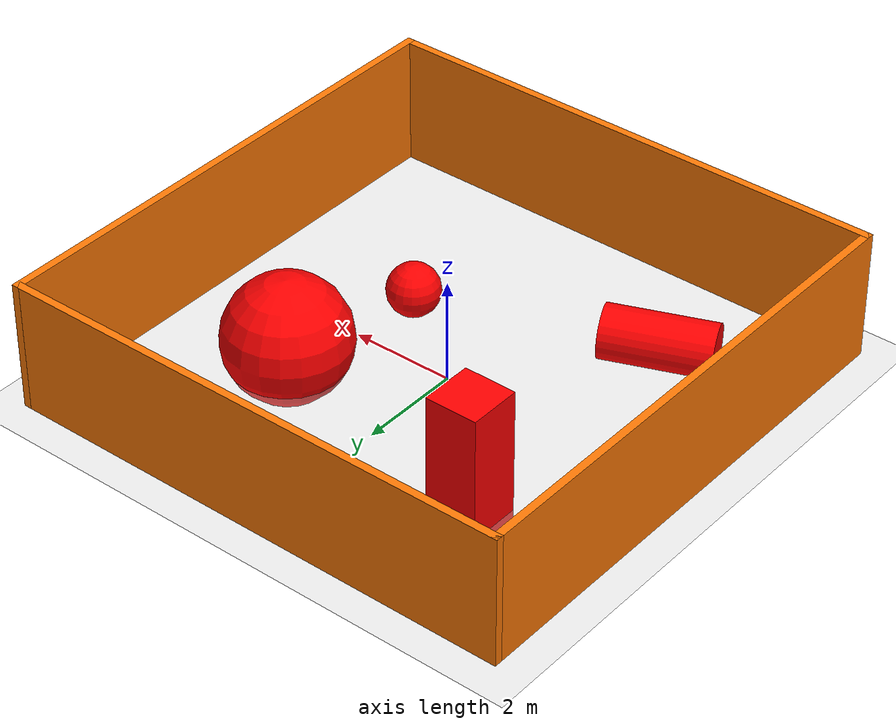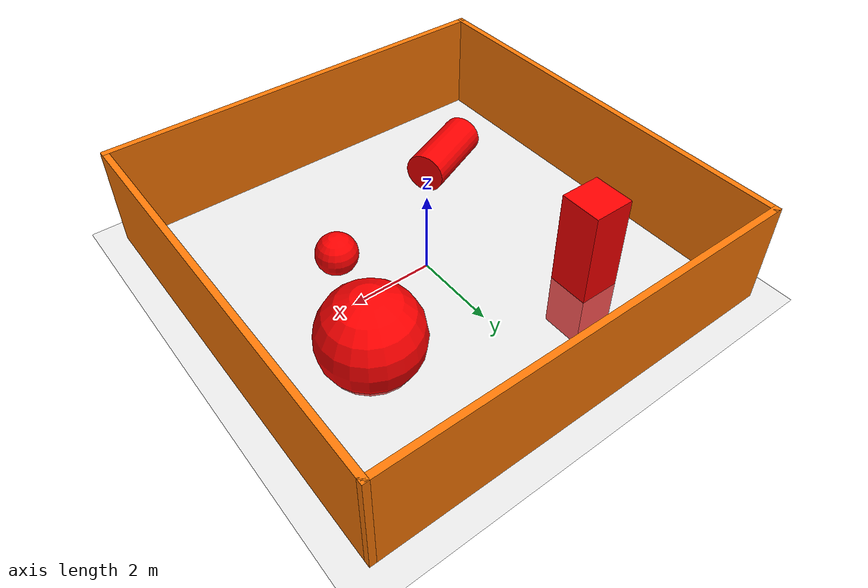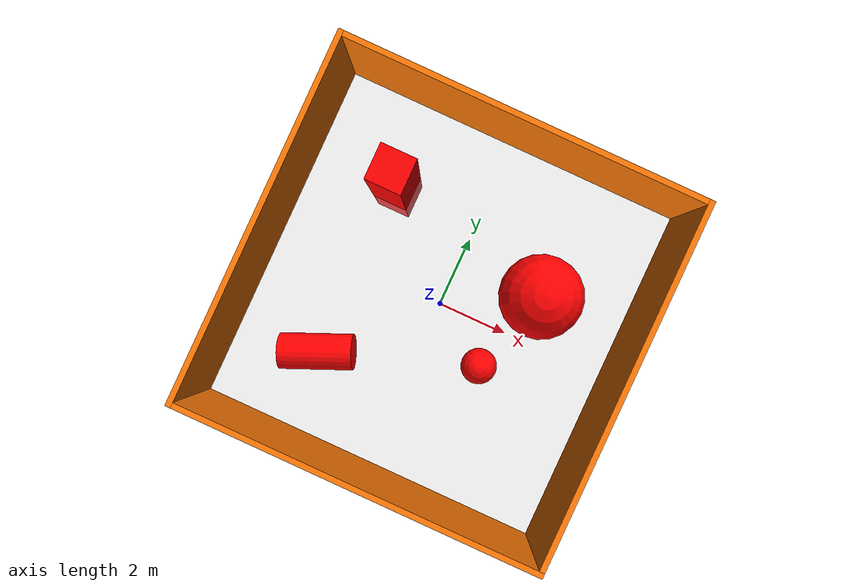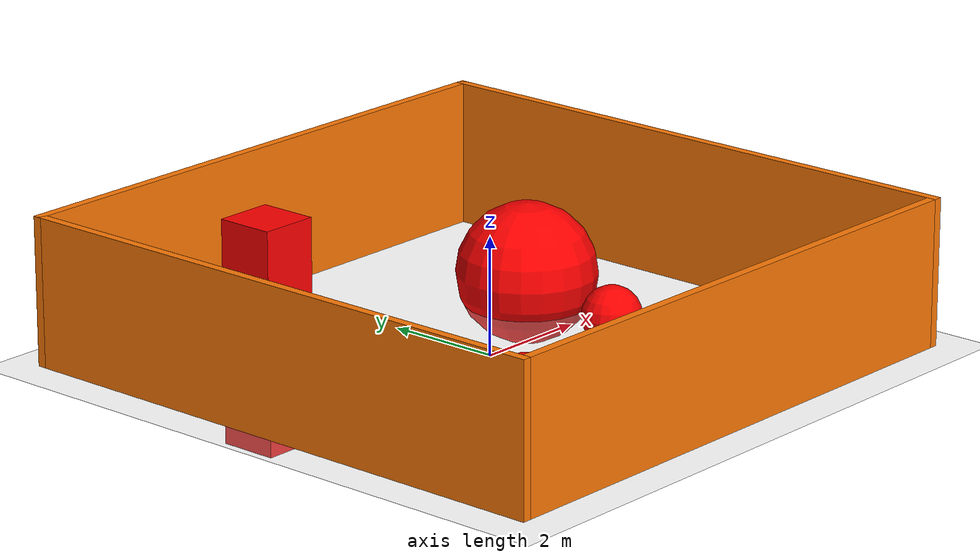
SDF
<sdf version="1.6">
 <world name="default">
  <light name="sun" type="directional">
   <pose>0 0 10 0 -0 0</pose>
   <diffuse>0.8 0.8 0.8 1</diffuse>
   <specular>0.2 0.2 0.2 1</specular>
   <attenuation>
    <range>1000</range>
    <constant>0.9</constant>
    <linear>0.01</linear>
    <quadratic>0.001</quadratic>
   </attenuation>
   <direction>-0.5 0.1 -0.9</direction>
  </light>
  <model name="ground_plane">
   <static>1</static>
   <link name="link">
    <collision name="collision">
     <geometry><plane><normal>0 0 1</normal><size>100 100</size></plane></geometry>
     <surface>
      <contact><collide_bitmask>65535</collide_bitmask></contact>
      <friction><ode><mu>100</mu><mu2>50</mu2></ode></friction>
     </surface>
    </collision>
    <visual name="visual">
     <cast_shadows>0</cast_shadows>
     <geometry><plane><normal>0 0 1</normal><size>100 100</size></plane></geometry>
     <material>
      <script><uri>file://media/materials/scripts/gazebo.material</uri><name>Gazebo/Grey</name></script>
     </material>
    </visual>
   </link>
  </model>
  <gravity>0 0 -9.8</gravity>
  <magnetic_field>6e-06 2.3e-05 -4.2e-05</magnetic_field>
  <atmosphere type="adiabatic"/>
  <physics name="default_physics" default="0" type="ode">
   <max_step_size>0.001</max_step_size>
   <real_time_factor>1</real_time_factor>
   <real_time_update_rate>1000</real_time_update_rate>
  </physics>
  <scene><ambient>0.4 0.4 0.4 1</ambient><background>0.7 0.7 0.7 1</background><shadows>1</shadows></scene>
  <audio><device>default</device></audio>
  <spherical_coordinates>
   <surface_model>EARTH_WGS84</surface_model>
   <latitude_deg>0</latitude_deg>
   <longitude_deg>0</longitude_deg>
   <elevation>0</elevation>
   <heading_deg>0</heading_deg>
  </spherical_coordinates>
  <model name="Crashland">
   <link name="Wall_0">
    <collision name="Wall_0_Collision">
     <geometry><box><size>10.15 0.15 2.5</size></box></geometry>
     <pose>0 0 1.25 0 -0 0</pose>
    </collision>
    <visual name="Wall_0_Visual">
     <pose>0 0 1.25 0 -0 0</pose>
     <geometry><box><size>10.15 0.15 2.5</size></box></geometry>
     <material>
      <script><uri>file://media/materials/scripts/gazebo.material</uri><name>Gazebo/Grey</name></script>
      <ambient>0.996078 0.47451 0.0196078 1</ambient>
     </material>
     <meta><layer>0</layer></meta>
    </visual>
    <pose>-5 0 0 0 -0 -1.5708</pose>
   </link>
   <link name="Wall_1">
    <collision name="Wall_1_Collision">
     <geometry><box><size>10.15 0.15 2.5</size></box></geometry>
     <pose>0 0 1.25 0 -0 0</pose>
    </collision>
    <visual name="Wall_1_Visual">
     <pose>0 0 1.25 0 -0 0</pose>
     <geometry><box><size>10.15 0.15 2.5</size></box></geometry>
     <material>
      <script><uri>file://media/materials/scripts/gazebo.material</uri><name>Gazebo/Grey</name></script>
      <ambient>0.996078 0.47451 0.0196078 1</ambient>
     </material>
     <meta><layer>0</layer></meta>
    </visual>
    <pose>0 -5 0 0 -0 0</pose>
   </link>
   <link name="Wall_2">
    <collision name="Wall_2_Collision">
     <geometry><box><size>10.15 0.15 2.5</size></box></geometry>
     <pose>0 0 1.25 0 -0 0</pose>
    </collision>
    <visual name="Wall_2_Visual">
     <pose>0 0 1.25 0 -0 0</pose>
     <geometry><box><size>10.15 0.15 2.5</size></box></geometry>
     <material>
      <script><uri>file://media/materials/scripts/gazebo.material</uri><name>Gazebo/Grey</name></script>
      <ambient>0.996078 0.47451 0.0196078 1</ambient>
     </material>
     <meta><layer>0</layer></meta>
    </visual>
    <pose>5 0 0 0 -0 1.5708</pose>
   </link>
   <link name="Wall_3">
    <collision name="Wall_3_Collision">
     <geometry><box><size>10.15 0.15 2.5</size></box></geometry>
     <pose>0 0 1.25 0 -0 0</pose>
    </collision>
    <visual name="Wall_3_Visual">
     <pose>0 0 1.25 0 -0 0</pose>
     <geometry><box><size>10.15 0.15 2.5</size></box></geometry>
     <material>
      <script><uri>file://media/materials/scripts/gazebo.material</uri><name>Gazebo/Grey</name></script>
      <ambient>0.996078 0.47451 0.0196078 1</ambient>
     </material>
     <meta><layer>0</layer></meta>
    </visual>
    <pose>0 5 0 0 -0 3.14159</pose>
   </link>
   <static>1</static>
  </model>
  <model name="obstacle_1">
   <link name="link">
    <inertial>
     <mass>2000</mass>
     <inertia><ixx>2541.67</ixx><ixy>0</ixy><ixz>0</ixz><iyy>2541.67</iyy><iyz>0</iyz><izz>333.333</izz></inertia>
    </inertial>
    <visual name="visual">
     <geometry><box><size>1 1 3.77492</size></box></geometry>
     <material>
      <script><name>Gazebo/Grey</name><uri>file://media/materials/scripts/gazebo.material</uri></script>
      <shader type="vertex"><normal_map>__default__</normal_map></shader>
      <ambient>1 0 0 1</ambient>
      <diffuse>1 0 0 1</diffuse>
      <specular>1 0 0 1</specular>
      <emissive>1 0 0 1</emissive>
     </material>
    </visual>
    <collision name="collision">
     <geometry><box><size>1 1 3.77492</size></box></geometry>
     <surface>
      <friction>
       <ode><mu>1</mu><mu2>1</mu2><fdir1>0 0 0</fdir1><slip1>0</slip1><slip2>0</slip2></ode>
       <torsional>
        <coefficient>1</coefficient>
        <patch_radius>0</patch_radius>
        <surface_radius>0</surface_radius>
        <use_patch_radius>1</use_patch_radius>
        <ode><slip>0</slip></ode>
       </torsional>
      </friction>
      <bounce><restitution_coefficient>0</restitution_coefficient><threshold>1e+06</threshold></bounce>
      <contact>
       <collide_without_contact>0</collide_without_contact>
       <collide_without_contact_bitmask>1</collide_without_contact_bitmask>
       <collide_bitmask>1</collide_bitmask>
       <ode>
        <soft_cfm>0</soft_cfm>
        <soft_erp>0.2</soft_erp>
        <kp>1e+13</kp>
        <kd>1</kd>
        <max_vel>0.01</max_vel>
        <min_depth>0</min_depth>
       </ode>
       <bullet>
        <split_impulse>1</split_impulse>
        <split_impulse_penetration_threshold>-0.01</split_impulse_penetration_threshold>
        <soft_cfm>0</soft_cfm>
        <soft_erp>0.2</soft_erp>
        <kp>1e+13</kp>
        <kd>1</kd>
       </bullet>
      </contact>
     </surface>
    </collision>
   </link>
   <static>0</static>
   <pose>-2.5 2.5 0.5 0 -0 0</pose>
  </model>
  <model name="obstacle_2">
   <link name="link">
    <inertial>
     <mass>13.4619</mass>
     <inertia><ixx>7.61816</ixx><ixy>0</ixy><ixz>0</ixz><iyy>7.61816</iyy><iyz>0</iyz><izz>7.61816</izz></inertia>
    </inertial>
    <visual name="visual">
     <geometry><sphere><radius>1.18944</radius></sphere></geometry>
     <material>
      <script><name>Gazebo/Grey</name><uri>file://media/materials/scripts/gazebo.material</uri></script>
      <ambient>1 0 0 1</ambient>
      <shader type="vertex"><normal_map>__default__</normal_map></shader>
      <diffuse>1 0 0 1</diffuse>
      <specular>1 0 0 1</specular>
      <emissive>1 0 0 1</emissive>
     </material>
    </visual>
    <collision name="collision">
     <geometry><sphere><radius>1.18944</radius></sphere></geometry>
     <surface>
      <friction>
       <ode><mu>1</mu><mu2>1</mu2><fdir1>0 0 0</fdir1><slip1>0</slip1><slip2>0</slip2></ode>
       <torsional>
        <coefficient>1</coefficient>
        <patch_radius>0</patch_radius>
        <surface_radius>0</surface_radius>
        <use_patch_radius>1</use_patch_radius>
        <ode><slip>0</slip></ode>
       </torsional>
      </friction>
      <bounce><restitution_coefficient>0</restitution_coefficient><threshold>1e+06</threshold></bounce>
      <contact>
       <collide_without_contact>0</collide_without_contact>
       <collide_without_contact_bitmask>1</collide_without_contact_bitmask>
       <collide_bitmask>1</collide_bitmask>
       <ode>
        <soft_cfm>0</soft_cfm>
        <soft_erp>0.2</soft_erp>
        <kp>1e+13</kp>
        <kd>1</kd>
        <max_vel>0.01</max_vel>
        <min_depth>0</min_depth>
       </ode>
       <bullet>
        <split_impulse>1</split_impulse>
        <split_impulse_penetration_threshold>-0.01</split_impulse_penetration_threshold>
        <soft_cfm>0</soft_cfm>
        <soft_erp>0.2</soft_erp>
        <kp>1e+13</kp>
        <kd>1</kd>
       </bullet>
      </contact>
     </surface>
    </collision>
   </link>
   <static>0</static>
   <pose>2.44969 1.33473 0.5 0 -0 0</pose>
  </model>
  <model name="obstacle_3">
   <link name="link">
    <inertial>
     <mass>2.01998</mass>
     <inertia>
      <ixx>0.813095</ixx>
      <ixy>0</ixy>
      <ixz>0</ixz>
      <iyy>0.813095</iyy>
      <iyz>0</iyz>
      <izz>0.252497</izz>
     </inertia>
    </inertial>
    <pose>0.485396 0.281713 0 -0.409462 1.54464 0</pose>
    <visual name="visual">
     <geometry><cylinder><radius>0.5</radius><length>2.01998</length></cylinder></geometry>
     <material>
      <script><name>Gazebo/Grey</name><uri>file://media/materials/scripts/gazebo.material</uri></script>
      <ambient>1 0 0 0</ambient>
      <shader type="vertex"><normal_map>__default__</normal_map></shader>
      <diffuse>1 0 0 1</diffuse>
      <specular>1 0 0 1</specular>
      <emissive>1 0 0 1</emissive>
     </material>
    </visual>
    <collision name="collision">
     <geometry><cylinder><radius>0.5</radius><length>2.01998</length></cylinder></geometry>
     <surface>
      <friction>
       <ode><mu>1</mu><mu2>1</mu2><fdir1>0 0 0</fdir1><slip1>0</slip1><slip2>0</slip2></ode>
       <torsional>
        <coefficient>1</coefficient>
        <patch_radius>0</patch_radius>
        <surface_radius>0</surface_radius>
        <use_patch_radius>1</use_patch_radius>
        <ode><slip>0</slip></ode>
       </torsional>
      </friction>
      <bounce><restitution_coefficient>0</restitution_coefficient><threshold>1e+06</threshold></bounce>
      <contact>
       <collide_without_contact>0</collide_without_contact>
       <collide_without_contact_bitmask>1</collide_without_contact_bitmask>
       <collide_bitmask>1</collide_bitmask>
       <ode>
        <soft_cfm>0</soft_cfm>
        <soft_erp>0.2</soft_erp>
        <kp>1e+13</kp>
        <kd>1</kd>
        <max_vel>0.01</max_vel>
        <min_depth>0</min_depth>
       </ode>
       <bullet>
        <split_impulse>1</split_impulse>
        <split_impulse_penetration_threshold>-0.01</split_impulse_penetration_threshold>
        <soft_cfm>0</soft_cfm>
        <soft_erp>0.2</soft_erp>
        <kp>1e+13</kp>
        <kd>1</kd>
       </bullet>
      </contact>
     </surface>
    </collision>
   </link>
   <static>0</static>
   <pose>-3.02716 -2.90027 0.5 0 -0 0</pose>
  </model>
  <model name="obstacle_4">
   <link name="link">
    <inertial>
     <mass>1</mass>
     <inertia><ixx>0.1</ixx><ixy>0</ixy><ixz>0</ixz><iyy>0.1</iyy><iyz>0</iyz><izz>0.1</izz></inertia>
    </inertial>
    <visual name="visual">
     <geometry><sphere><radius>0.5</radius></sphere></geometry>
     <material>
      <script><name>Gazebo/Grey</name><uri>file://media/materials/scripts/gazebo.material</uri></script>
      <ambient>1 0 0 0</ambient>
      <shader type="vertex"><normal_map>__default__</normal_map></shader>
      <diffuse>1 0 0 1</diffuse>
      <specular>1 0 0 1</specular>
      <emissive>1 0 0 1</emissive>
     </material>
    </visual>
    <collision name="collision">
     <geometry><sphere><radius>0.5</radius></sphere></geometry>
     <surface>
      <friction>
       <ode><mu>1</mu><mu2>1</mu2><fdir1>0 0 0</fdir1><slip1>0</slip1><slip2>0</slip2></ode>
       <torsional>
        <coefficient>1</coefficient>
        <patch_radius>0</patch_radius>
        <surface_radius>0</surface_radius>
        <use_patch_radius>1</use_patch_radius>
        <ode><slip>0</slip></ode>
       </torsional>
      </friction>
      <bounce><restitution_coefficient>0</restitution_coefficient><threshold>1e+06</threshold></bounce>
      <contact>
       <collide_without_contact>0</collide_without_contact>
       <collide_without_contact_bitmask>1</collide_without_contact_bitmask>
       <collide_bitmask>1</collide_bitmask>
       <ode>
        <soft_cfm>0</soft_cfm>
        <soft_erp>0.2</soft_erp>
        <kp>1e+13</kp>
        <kd>1</kd>
        <max_vel>0.01</max_vel>
        <min_depth>0</min_depth>
       </ode>
       <bullet>
        <split_impulse>1</split_impulse>
        <split_impulse_penetration_threshold>-0.01</split_impulse_penetration_threshold>
        <soft_cfm>0</soft_cfm>
        <soft_erp>0.2</soft_erp>
        <kp>1e+13</kp>
        <kd>1</kd>
       </bullet>
      </contact>
     </surface>
    </collision>
   </link>
   <static>0</static>
   <pose>1.6818 -1.12317 0.5 0 -0 0</pose>
  </model>
 </world>
</sdf>
